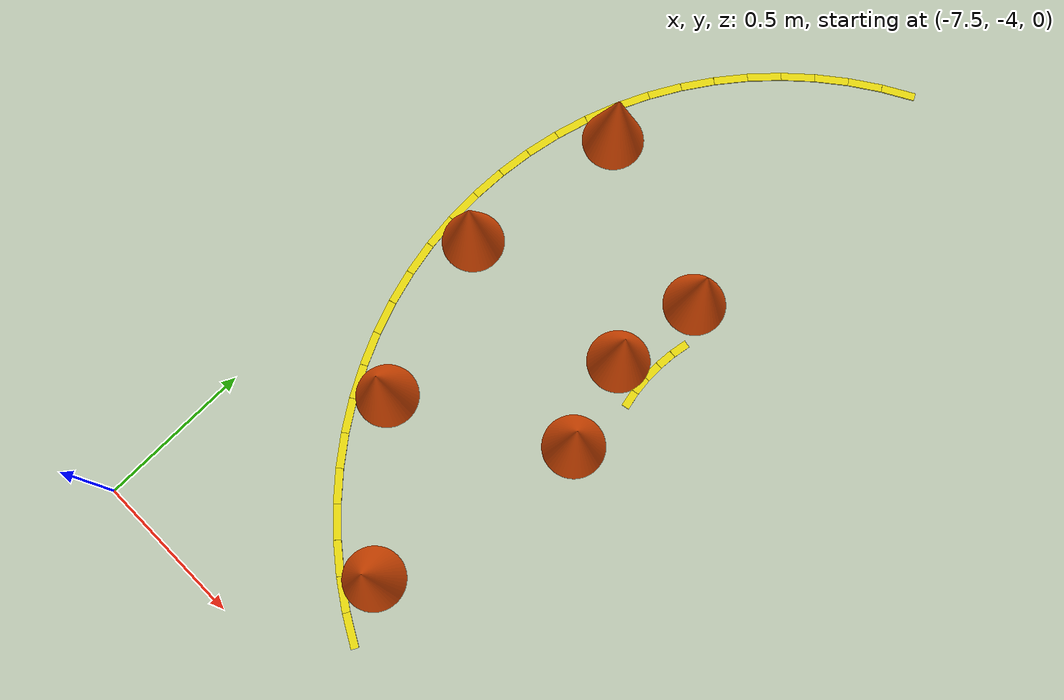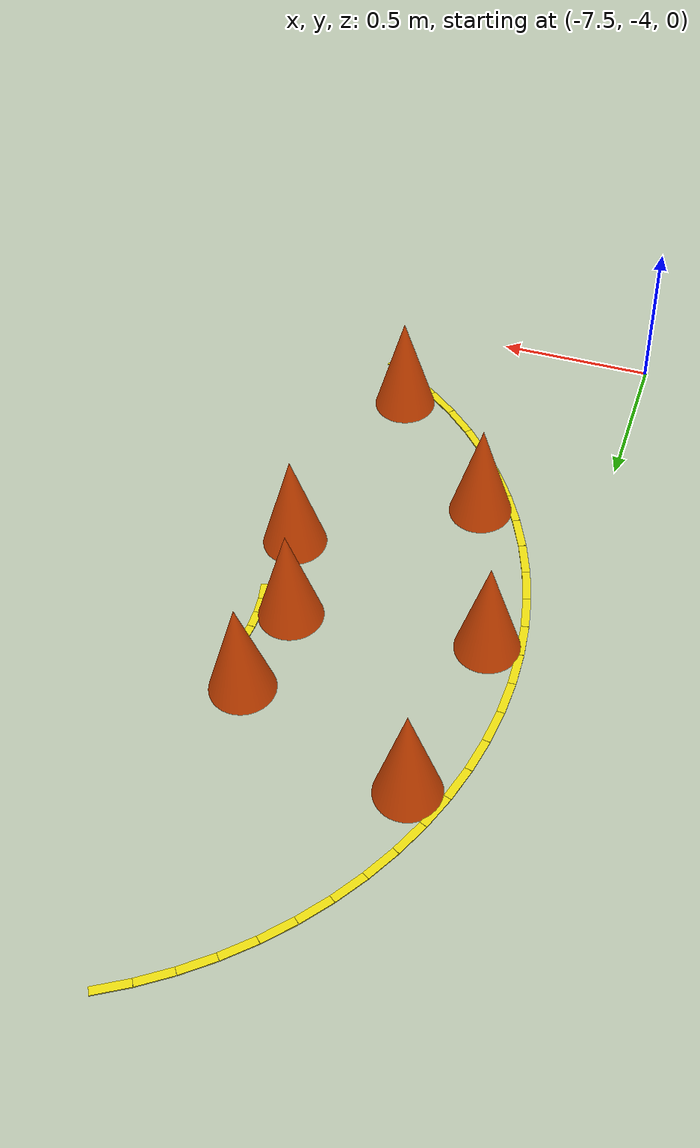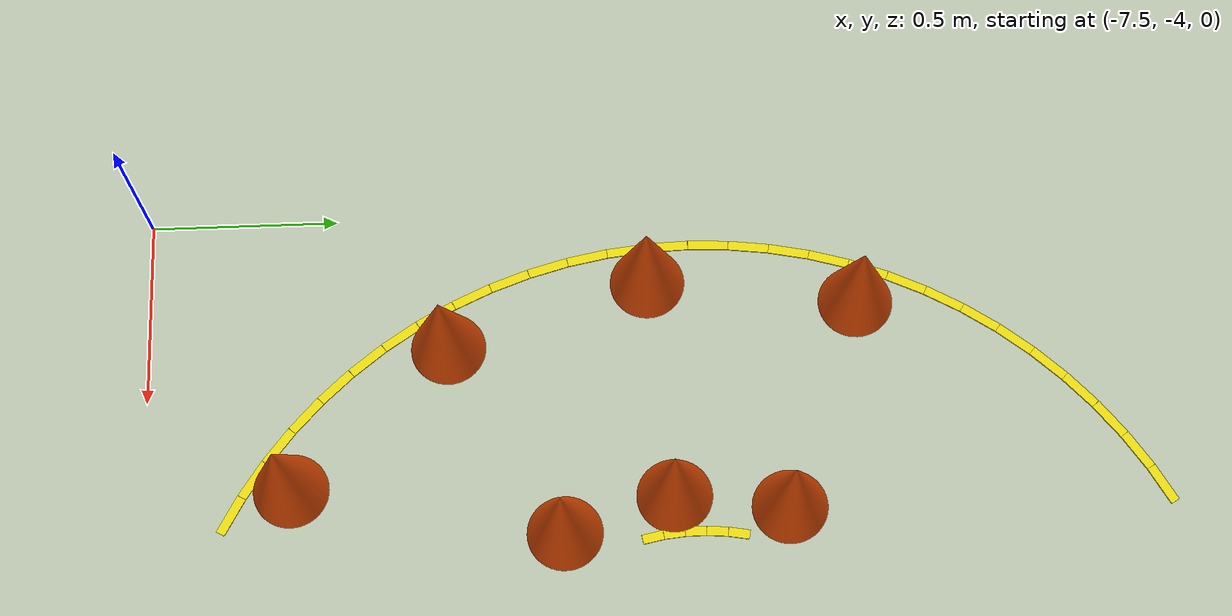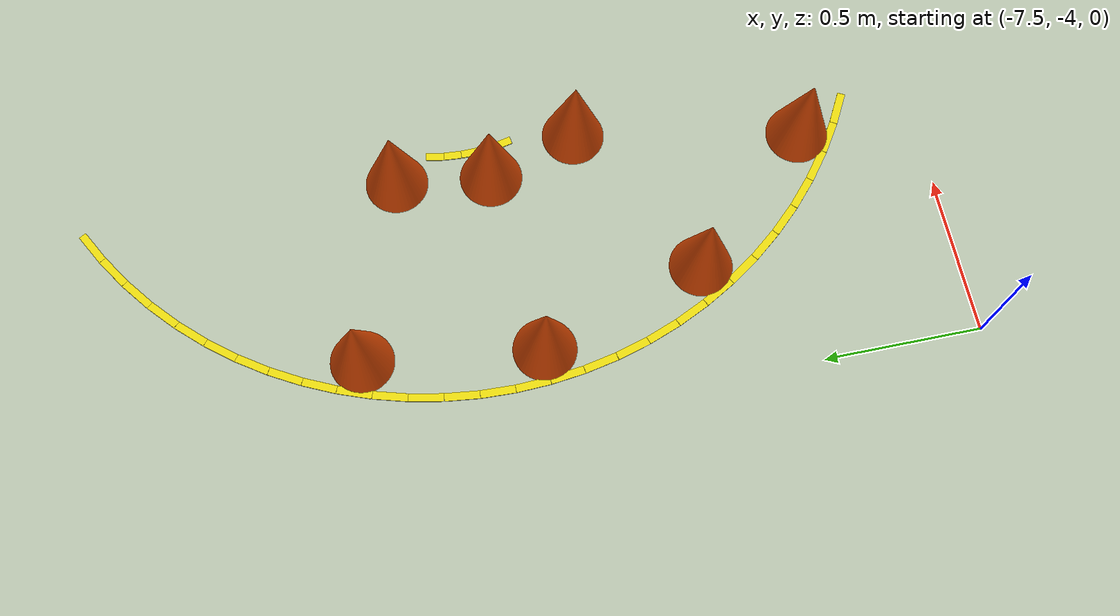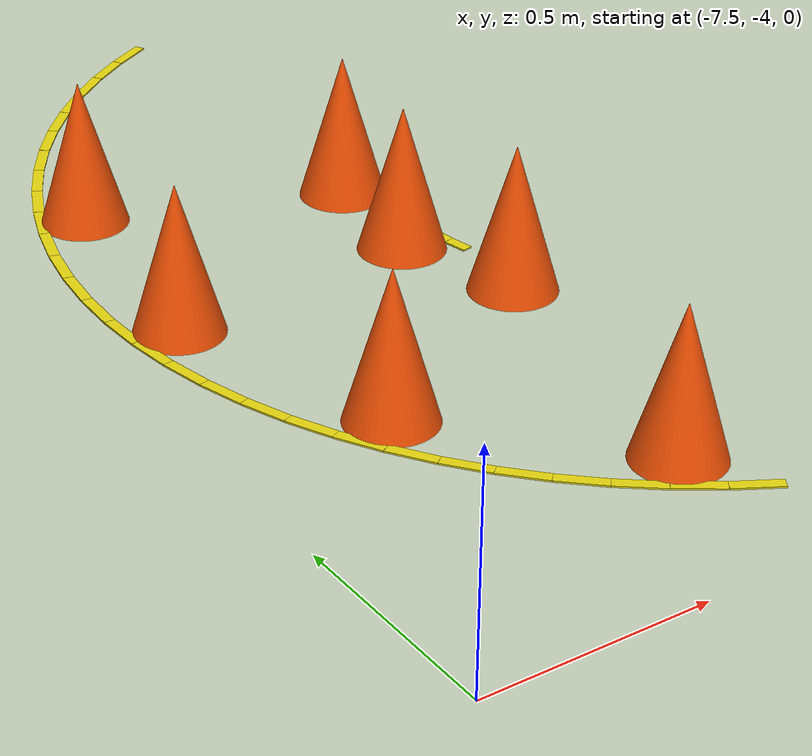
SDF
<sdf version="1.6">
 <world name="limo_competition">
  <include><uri>model://sun</uri></include>
  <model name="left_uturn_outer_3">
   <static>true</static>
   <pose>-6.6835423451188465 -1.3294473180202777 0.003 0 0 -2.6310838473814515</pose>
   <link name="link">
    <visual name="visual">
     <geometry><box><size>0.10992748412539179 0.025 0.004</size></box></geometry>
     <material>
      <ambient>0.88 0.82 0.05 1.0</ambient>
      <diffuse>0.88 0.82 0.05 1.0</diffuse>
      <specular>0.05 0.05 0.05 1</specular>
     </material>
    </visual>
   </link>
  </model>
  <model name="left_uturn_outer_4">
   <static>true</static>
   <pose>-6.777198671905895 -1.386839988889672 0.003 0 0 -2.552544031041705</pose>
   <link name="link">
    <visual name="visual">
     <geometry><box><size>0.10992748412539222 0.025 0.004</size></box></geometry>
     <material>
      <ambient>0.88 0.82 0.05 1.0</ambient>
      <diffuse>0.88 0.82 0.05 1.0</diffuse>
      <specular>0.05 0.05 0.05 1</specular>
     </material>
    </visual>
   </link>
  </model>
  <model name="left_uturn_outer_5">
   <static>true</static>
   <pose>-6.86606331043586 -1.451403928017515 0.003 0 0 -2.474004214701965</pose>
   <link name="link">
    <visual name="visual">
     <geometry><box><size>0.10992748412539231 0.025 0.004</size></box></geometry>
     <material>
      <ambient>0.88 0.82 0.05 1.0</ambient>
      <diffuse>0.88 0.82 0.05 1.0</diffuse>
      <specular>0.05 0.05 0.05 1</specular>
     </material>
    </visual>
   </link>
  </model>
  <model name="left_uturn_outer_6">
   <static>true</static>
   <pose>-6.949588380661712 -1.5227410772493948 0.003 0 0 -2.395464398362216</pose>
   <link name="link">
    <visual name="visual">
     <geometry><box><size>0.10992748412539183 0.025 0.004</size></box></geometry>
     <material>
      <ambient>0.88 0.82 0.05 1.0</ambient>
      <diffuse>0.88 0.82 0.05 1.0</diffuse>
      <specular>0.05 0.05 0.05 1</specular>
     </material>
    </visual>
   </link>
  </model>
  <model name="left_uturn_outer_7">
   <static>true</static>
   <pose>-7.027258922750605 -1.600411619338288 0.003 0 0 -2.316924582022471</pose>
   <link name="link">
    <visual name="visual">
     <geometry><box><size>0.10992748412539183 0.025 0.004</size></box></geometry>
     <material>
      <ambient>0.88 0.82 0.05 1.0</ambient>
      <diffuse>0.88 0.82 0.05 1.0</diffuse>
      <specular>0.05 0.05 0.05 1</specular>
     </material>
    </visual>
   </link>
  </model>
  <model name="left_uturn_outer_8">
   <static>true</static>
   <pose>-7.0985960719824845 -1.6839366895641399 0.003 0 0 -2.2383847656827305</pose>
   <link name="link">
    <visual name="visual">
     <geometry><box><size>0.10992748412539224 0.025 0.004</size></box></geometry>
     <material>
      <ambient>0.88 0.82 0.05 1.0</ambient>
      <diffuse>0.88 0.82 0.05 1.0</diffuse>
      <specular>0.05 0.05 0.05 1</specular>
     </material>
    </visual>
   </link>
  </model>
  <model name="left_uturn_outer_9">
   <static>true</static>
   <pose>-7.163160011110328 -1.7728013280941042 0.003 0 0 -2.159844949342984</pose>
   <link name="link">
    <visual name="visual">
     <geometry><box><size>0.10992748412539241 0.025 0.004</size></box></geometry>
     <material>
      <ambient>0.88 0.82 0.05 1.0</ambient>
      <diffuse>0.88 0.82 0.05 1.0</diffuse>
      <specular>0.05 0.05 0.05 1</specular>
     </material>
    </visual>
   </link>
  </model>
  <model name="left_uturn_outer_10">
   <static>true</static>
   <pose>-7.220552681979722 -1.866457654881153 0.003 0 0 -2.0813051330032373</pose>
   <link name="link">
    <visual name="visual">
     <geometry><box><size>0.10992748412539197 0.025 0.004</size></box></geometry>
     <material>
      <ambient>0.88 0.82 0.05 1.0</ambient>
      <diffuse>0.88 0.82 0.05 1.0</diffuse>
      <specular>0.05 0.05 0.05 1</specular>
     </material>
    </visual>
   </link>
  </model>
  <model name="left_uturn_outer_11">
   <static>true</static>
   <pose>-7.2704202396897575 -1.964328247526754 0.003 0 0 -2.002765316663489</pose>
   <link name="link">
    <visual name="visual">
     <geometry><box><size>0.10992748412539176 0.025 0.004</size></box></geometry>
     <material>
      <ambient>0.88 0.82 0.05 1.0</ambient>
      <diffuse>0.88 0.82 0.05 1.0</diffuse>
      <specular>0.05 0.05 0.05 1</specular>
     </material>
    </visual>
   </link>
  </model>
  <model name="left_uturn_outer_12">
   <static>true</static>
   <pose>-7.312455234164508 -2.0658097012819736 0.003 0 0 -1.9242255003237494</pose>
   <link name="link">
    <visual name="visual">
     <geometry><box><size>0.10992748412539226 0.025 0.004</size></box></geometry>
     <material>
      <ambient>0.88 0.82 0.05 1.0</ambient>
      <diffuse>0.88 0.82 0.05 1.0</diffuse>
      <specular>0.05 0.05 0.05 1</specular>
     </material>
    </visual>
   </link>
  </model>
  <model name="left_uturn_outer_13">
   <static>true</static>
   <pose>-7.346398505684981 -2.170276349238403 0.003 0 0 -1.8456856839840048</pose>
   <link name="link">
    <visual name="visual">
     <geometry><box><size>0.10992748412539219 0.025 0.004</size></box></geometry>
     <material>
      <ambient>0.88 0.82 0.05 1.0</ambient>
      <diffuse>0.88 0.82 0.05 1.0</diffuse>
      <specular>0.05 0.05 0.05 1</specular>
     </material>
    </visual>
   </link>
  </model>
  <model name="left_uturn_outer_14">
   <static>true</static>
   <pose>-7.37204078269497 -2.277084119772704 0.003 0 0 -1.767145867644261</pose>
   <link name="link">
    <visual name="visual">
     <geometry><box><size>0.10992748412539208 0.025 0.004</size></box></geometry>
     <material>
      <ambient>0.88 0.82 0.05 1.0</ambient>
      <diffuse>0.88 0.82 0.05 1.0</diffuse>
      <specular>0.05 0.05 0.05 1</specular>
     </material>
    </visual>
   </link>
  </model>
  <model name="left_uturn_outer_15">
   <static>true</static>
   <pose>-7.389223972029786 -2.385574507462347 0.003 0 0 -1.688606051304512</pose>
   <link name="link">
    <visual name="visual">
     <geometry><box><size>0.10992748412539224 0.025 0.004</size></box></geometry>
     <material>
      <ambient>0.88 0.82 0.05 1.0</ambient>
      <diffuse>0.88 0.82 0.05 1.0</diffuse>
      <specular>0.05 0.05 0.05 1</specular>
     </material>
    </visual>
   </link>
  </model>
  <model name="left_uturn_outer_16">
   <static>true</static>
   <pose>-7.39784213361319 -2.4950786329905084 0.003 0 0 -1.6100662349647743</pose>
   <link name="link">
    <visual name="visual">
     <geometry><box><size>0.10992748412539213 0.025 0.004</size></box></geometry>
     <material>
      <ambient>0.88 0.82 0.05 1.0</ambient>
      <diffuse>0.88 0.82 0.05 1.0</diffuse>
      <specular>0.05 0.05 0.05 1</specular>
     </material>
    </visual>
   </link>
  </model>
  <model name="left_uturn_outer_17">
   <static>true</static>
   <pose>-7.39784213361319 -2.6049213670094913 0.003 0 0 -1.531526418625019</pose>
   <link name="link">
    <visual name="visual">
     <geometry><box><size>0.10992748412539213 0.025 0.004</size></box></geometry>
     <material>
      <ambient>0.88 0.82 0.05 1.0</ambient>
      <diffuse>0.88 0.82 0.05 1.0</diffuse>
      <specular>0.05 0.05 0.05 1</specular>
     </material>
    </visual>
   </link>
  </model>
  <model name="left_uturn_outer_18">
   <static>true</static>
   <pose>-7.389223972029786 -2.7144254925376528 0.003 0 0 -1.4529866022852809</pose>
   <link name="link">
    <visual name="visual">
     <geometry><box><size>0.1099274841253918 0.025 0.004</size></box></geometry>
     <material>
      <ambient>0.88 0.82 0.05 1.0</ambient>
      <diffuse>0.88 0.82 0.05 1.0</diffuse>
      <specular>0.05 0.05 0.05 1</specular>
     </material>
    </visual>
   </link>
  </model>
  <model name="left_uturn_outer_19">
   <static>true</static>
   <pose>-7.37204078269497 -2.8229158802272947 0.003 0 0 -1.374446785945532</pose>
   <link name="link">
    <visual name="visual">
     <geometry><box><size>0.10992748412539208 0.025 0.004</size></box></geometry>
     <material>
      <ambient>0.88 0.82 0.05 1.0</ambient>
      <diffuse>0.88 0.82 0.05 1.0</diffuse>
      <specular>0.05 0.05 0.05 1</specular>
     </material>
    </visual>
   </link>
  </model>
  <model name="left_uturn_outer_20">
   <static>true</static>
   <pose>-7.346398505684981 -2.9297236507615967 0.003 0 0 -1.2959069696057963</pose>
   <link name="link">
    <visual name="visual">
     <geometry><box><size>0.10992748412539195 0.025 0.004</size></box></geometry>
     <material>
      <ambient>0.88 0.82 0.05 1.0</ambient>
      <diffuse>0.88 0.82 0.05 1.0</diffuse>
      <specular>0.05 0.05 0.05 1</specular>
     </material>
    </visual>
   </link>
  </model>
  <model name="left_uturn_outer_21">
   <static>true</static>
   <pose>-7.312455234164508 -3.0341902987180256 0.003 0 0 -1.2173671532660437</pose>
   <link name="link">
    <visual name="visual">
     <geometry><box><size>0.10992748412539226 0.025 0.004</size></box></geometry>
     <material>
      <ambient>0.88 0.82 0.05 1.0</ambient>
      <diffuse>0.88 0.82 0.05 1.0</diffuse>
      <specular>0.05 0.05 0.05 1</specular>
     </material>
    </visual>
   </link>
  </model>
  <model name="left_uturn_outer_22">
   <static>true</static>
   <pose>-7.270420239689758 -3.135671752473245 0.003 0 0 -1.1388273369262971</pose>
   <link name="link">
    <visual name="visual">
     <geometry><box><size>0.10992748412539213 0.025 0.004</size></box></geometry>
     <material>
      <ambient>0.88 0.82 0.05 1.0</ambient>
      <diffuse>0.88 0.82 0.05 1.0</diffuse>
      <specular>0.05 0.05 0.05 1</specular>
     </material>
    </visual>
   </link>
  </model>
  <model name="left_uturn_outer_23">
   <static>true</static>
   <pose>-7.220552681979722 -3.2335423451188463 0.003 0 0 -1.060287520586557</pose>
   <link name="link">
    <visual name="visual">
     <geometry><box><size>0.10992748412539216 0.025 0.004</size></box></geometry>
     <material>
      <ambient>0.88 0.82 0.05 1.0</ambient>
      <diffuse>0.88 0.82 0.05 1.0</diffuse>
      <specular>0.05 0.05 0.05 1</specular>
     </material>
    </visual>
   </link>
  </model>
  <model name="left_uturn_outer_24">
   <static>true</static>
   <pose>-7.163160011110328 -3.327198671905895 0.003 0 0 -0.9817477042468084</pose>
   <link name="link">
    <visual name="visual">
     <geometry><box><size>0.10992748412539222 0.025 0.004</size></box></geometry>
     <material>
      <ambient>0.88 0.82 0.05 1.0</ambient>
      <diffuse>0.88 0.82 0.05 1.0</diffuse>
      <specular>0.05 0.05 0.05 1</specular>
     </material>
    </visual>
   </link>
  </model>
  <model name="left_uturn_outer_25">
   <static>true</static>
   <pose>-7.0985960719824845 -3.4160633104358595 0.003 0 0 -0.9032078879070626</pose>
   <link name="link">
    <visual name="visual">
     <geometry><box><size>0.10992748412539224 0.025 0.004</size></box></geometry>
     <material>
      <ambient>0.88 0.82 0.05 1.0</ambient>
      <diffuse>0.88 0.82 0.05 1.0</diffuse>
      <specular>0.05 0.05 0.05 1</specular>
     </material>
    </visual>
   </link>
  </model>
  <model name="left_uturn_outer_26">
   <static>true</static>
   <pose>-7.027258922750605 -3.499588380661711 0.003 0 0 -0.8246680715673236</pose>
   <link name="link">
    <visual name="visual">
     <geometry><box><size>0.109927484125392 0.025 0.004</size></box></geometry>
     <material>
      <ambient>0.88 0.82 0.05 1.0</ambient>
      <diffuse>0.88 0.82 0.05 1.0</diffuse>
      <specular>0.05 0.05 0.05 1</specular>
     </material>
    </visual>
   </link>
  </model>
  <model name="left_uturn_outer_27">
   <static>true</static>
   <pose>-6.949588380661711 -3.577258922750605 0.003 0 0 -0.7461282552275763</pose>
   <link name="link">
    <visual name="visual">
     <geometry><box><size>0.10992748412539292 0.025 0.004</size></box></geometry>
     <material>
      <ambient>0.88 0.82 0.05 1.0</ambient>
      <diffuse>0.88 0.82 0.05 1.0</diffuse>
      <specular>0.05 0.05 0.05 1</specular>
     </material>
    </visual>
   </link>
  </model>
  <model name="left_uturn_outer_28">
   <static>true</static>
   <pose>-6.866063310435859 -3.648596071982485 0.003 0 0 -0.6675884388878301</pose>
   <link name="link">
    <visual name="visual">
     <geometry><box><size>0.10992748412539134 0.025 0.004</size></box></geometry>
     <material>
      <ambient>0.88 0.82 0.05 1.0</ambient>
      <diffuse>0.88 0.82 0.05 1.0</diffuse>
      <specular>0.05 0.05 0.05 1</specular>
     </material>
    </visual>
   </link>
  </model>
  <model name="left_uturn_outer_29">
   <static>true</static>
   <pose>-6.777198671905895 -3.7131600111103276 0.003 0 0 -0.5890486225480883</pose>
   <link name="link">
    <visual name="visual">
     <geometry><box><size>0.10992748412539222 0.025 0.004</size></box></geometry>
     <material>
      <ambient>0.88 0.82 0.05 1.0</ambient>
      <diffuse>0.88 0.82 0.05 1.0</diffuse>
      <specular>0.05 0.05 0.05 1</specular>
     </material>
    </visual>
   </link>
  </model>
  <model name="left_uturn_outer_30">
   <static>true</static>
   <pose>-6.6835423451188465 -3.770552681979722 0.003 0 0 -0.5105088062083417</pose>
   <link name="link">
    <visual name="visual">
     <geometry><box><size>0.10992748412539179 0.025 0.004</size></box></geometry>
     <material>
      <ambient>0.88 0.82 0.05 1.0</ambient>
      <diffuse>0.88 0.82 0.05 1.0</diffuse>
      <specular>0.05 0.05 0.05 1</specular>
     </material>
    </visual>
   </link>
  </model>
  <model name="left_uturn_inner_12">
   <static>true</static>
   <pose>-6.590409438975968 -2.446957057511746 0.003 0 0 -1.7435839227423293</pose>
   <link name="link">
    <visual name="visual">
     <geometry><box><size>0.056527740851570966 0.025 0.004</size></box></geometry>
     <material>
      <ambient>0.88 0.82 0.05 1.0</ambient>
      <diffuse>0.88 0.82 0.05 1.0</diffuse>
      <specular>0.05 0.05 0.05 1</specular>
     </material>
    </visual>
   </link>
  </model>
  <model name="left_uturn_inner_13">
   <static>true</static>
   <pose>-6.597486378504063 -2.50297680220727 0.003 0 0 -1.649336143134638</pose>
   <link name="link">
    <visual name="visual">
     <geometry><box><size>0.05652774085157114 0.025 0.004</size></box></geometry>
     <material>
      <ambient>0.88 0.82 0.05 1.0</ambient>
      <diffuse>0.88 0.82 0.05 1.0</diffuse>
      <specular>0.05 0.05 0.05 1</specular>
     </material>
    </visual>
   </link>
  </model>
  <model name="left_uturn_inner_14">
   <static>true</static>
   <pose>-6.5992599866382005 -2.5594139281353554 0.003 0 0 -1.5550883635269535</pose>
   <link name="link">
    <visual name="visual">
     <geometry><box><size>0.056527740851571376 0.025 0.004</size></box></geometry>
     <material>
      <ambient>0.88 0.82 0.05 1.0</ambient>
      <diffuse>0.88 0.82 0.05 1.0</diffuse>
      <specular>0.05 0.05 0.05 1</specular>
     </material>
    </visual>
   </link>
  </model>
  <model name="left_uturn_inner_15">
   <static>true</static>
   <pose>-6.595714520707023 -2.6157674953708634 0.003 0 0 -1.4608405839192533</pose>
   <link name="link">
    <visual name="visual">
     <geometry><box><size>0.05652774085157106 0.025 0.004</size></box></geometry>
     <material>
      <ambient>0.88 0.82 0.05 1.0</ambient>
      <diffuse>0.88 0.82 0.05 1.0</diffuse>
      <specular>0.05 0.05 0.05 1</specular>
     </material>
    </visual>
   </link>
  </model>
  <model name="left_uturn_inner_16">
   <static>true</static>
   <pose>-6.586881450517131 -2.6715373056615257 0.003 0 0 -1.366592804311559</pose>
   <link name="link">
    <visual name="visual">
     <geometry><box><size>0.056527740851571556 0.025 0.004</size></box></geometry>
     <material>
      <ambient>0.88 0.82 0.05 1.0</ambient>
      <diffuse>0.88 0.82 0.05 1.0</diffuse>
      <specular>0.05 0.05 0.05 1</specular>
     </material>
    </visual>
   </link>
  </model>
  <model name="cone_15">
   <static>true</static>
   <pose>-6.657784834550136 -2.3105858996720317 0.0 0.0 0.0 0.0</pose>
   <link name="link">
    <collision name="collision">
     <geometry>
      <mesh><uri>file:///home/td/Workspace/limo_competition_ws/src/webot_arena/meshes/traffic_cone.stl</uri></mesh>
     </geometry>
    </collision>
    <visual name="visual">
     <geometry>
      <mesh><uri>file:///home/td/Workspace/limo_competition_ws/src/webot_arena/meshes/traffic_cone.stl</uri></mesh>
     </geometry>
     <material>
      <ambient>0.98 0.33 0.02 1.0</ambient>
      <diffuse>0.98 0.33 0.02 1.0</diffuse>
      <specular>0.05 0.05 0.05 1</specular>
     </material>
    </visual>
   </link>
  </model>
  <model name="cone_16">
   <static>true</static>
   <pose>-7.221600407021681 -2.1053738136766302 0.0 0.0 0.0 0.0</pose>
   <link name="link">
    <collision name="collision">
     <geometry>
      <mesh><uri>file:///home/td/Workspace/limo_competition_ws/src/webot_arena/meshes/traffic_cone.stl</uri></mesh>
     </geometry>
    </collision>
    <visual name="visual">
     <geometry>
      <mesh><uri>file:///home/td/Workspace/limo_competition_ws/src/webot_arena/meshes/traffic_cone.stl</uri></mesh>
     </geometry>
     <material>
      <ambient>0.98 0.33 0.02 1.0</ambient>
      <diffuse>0.98 0.33 0.02 1.0</diffuse>
      <specular>0.05 0.05 0.05 1</specular>
     </material>
    </visual>
   </link>
  </model>
  <model name="cone_17">
   <static>true</static>
   <pose>-6.697336288664221 -2.6110090199233604 0.0 0.0 0.0 0.0</pose>
   <link name="link">
    <collision name="collision">
     <geometry>
      <mesh><uri>file:///home/td/Workspace/limo_competition_ws/src/webot_arena/meshes/traffic_cone.stl</uri></mesh>
     </geometry>
    </collision>
    <visual name="visual">
     <geometry>
      <mesh><uri>file:///home/td/Workspace/limo_competition_ws/src/webot_arena/meshes/traffic_cone.stl</uri></mesh>
     </geometry>
     <material>
      <ambient>0.98 0.33 0.02 1.0</ambient>
      <diffuse>0.98 0.33 0.02 1.0</diffuse>
      <specular>0.05 0.05 0.05 1</specular>
     </material>
    </visual>
   </link>
  </model>
  <model name="cone_18">
   <static>true</static>
   <pose>-7.295053107519269 -2.663302465571955 0.0 0.0 0.0 0.0</pose>
   <link name="link">
    <collision name="collision">
     <geometry>
      <mesh><uri>file:///home/td/Workspace/limo_competition_ws/src/webot_arena/meshes/traffic_cone.stl</uri></mesh>
     </geometry>
    </collision>
    <visual name="visual">
     <geometry>
      <mesh><uri>file:///home/td/Workspace/limo_competition_ws/src/webot_arena/meshes/traffic_cone.stl</uri></mesh>
     </geometry>
     <material>
      <ambient>0.98 0.33 0.02 1.0</ambient>
      <diffuse>0.98 0.33 0.02 1.0</diffuse>
      <specular>0.05 0.05 0.05 1</specular>
     </material>
    </visual>
   </link>
  </model>
  <model name="cone_19">
   <static>true</static>
   <pose>-6.606217782649107 -2.9 0.0 0.0 0.0 0.0</pose>
   <link name="link">
    <collision name="collision">
     <geometry>
      <mesh><uri>file:///home/td/Workspace/limo_competition_ws/src/webot_arena/meshes/traffic_cone.stl</uri></mesh>
     </geometry>
    </collision>
    <visual name="visual">
     <geometry>
      <mesh><uri>file:///home/td/Workspace/limo_competition_ws/src/webot_arena/meshes/traffic_cone.stl</uri></mesh>
     </geometry>
     <material>
      <ambient>0.98 0.33 0.02 1.0</ambient>
      <diffuse>0.98 0.33 0.02 1.0</diffuse>
      <specular>0.05 0.05 0.05 1</specular>
     </material>
    </visual>
   </link>
  </model>
  <model name="cone_20">
   <static>true</static>
   <pose>-7.12583302491977 -3.1999999999999997 0.0 0.0 0.0 0.0</pose>
   <link name="link">
    <collision name="collision">
     <geometry>
      <mesh><uri>file:///home/td/Workspace/limo_competition_ws/src/webot_arena/meshes/traffic_cone.stl</uri></mesh>
     </geometry>
    </collision>
    <visual name="visual">
     <geometry>
      <mesh><uri>file:///home/td/Workspace/limo_competition_ws/src/webot_arena/meshes/traffic_cone.stl</uri></mesh>
     </geometry>
     <material>
      <ambient>0.98 0.33 0.02 1.0</ambient>
      <diffuse>0.98 0.33 0.02 1.0</diffuse>
      <specular>0.05 0.05 0.05 1</specular>
     </material>
    </visual>
   </link>
  </model>
  <model name="cone_22">
   <static>true</static>
   <pose>-6.745649367256361 -3.614897657575689 0.0 0.0 0.0 0.0</pose>
   <link name="link">
    <collision name="collision">
     <geometry>
      <mesh><uri>file:///home/td/Workspace/limo_competition_ws/src/webot_arena/meshes/traffic_cone.stl</uri></mesh>
     </geometry>
    </collision>
    <visual name="visual">
     <geometry>
      <mesh><uri>file:///home/td/Workspace/limo_competition_ws/src/webot_arena/meshes/traffic_cone.stl</uri></mesh>
     </geometry>
     <material>
      <ambient>0.98 0.33 0.02 1.0</ambient>
      <diffuse>0.98 0.33 0.02 1.0</diffuse>
      <specular>0.05 0.05 0.05 1</specular>
     </material>
    </visual>
   </link>
  </model>
 </world>
</sdf>
